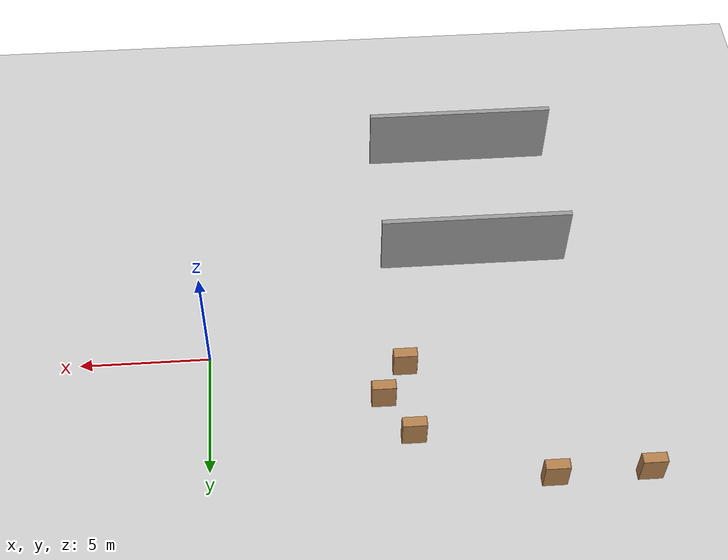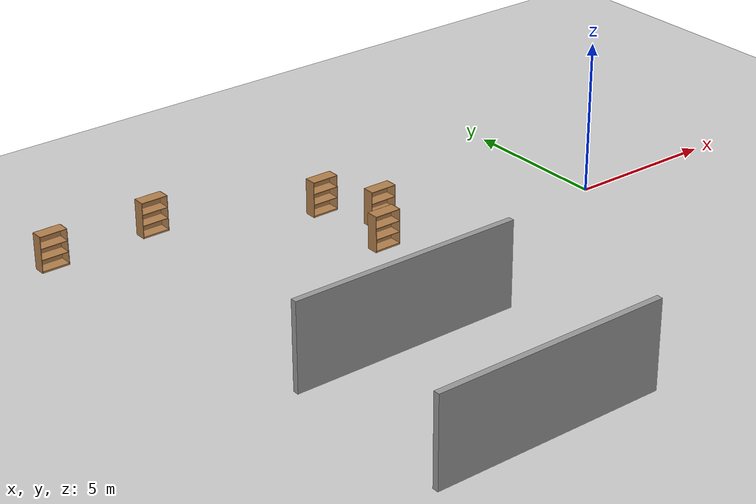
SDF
<sdf version="1.6">
 <world name="default">
  <model name="ground_plane">
   <static>1</static>
   <link name="link">
    <collision name="collision">
     <geometry><plane><normal>0 0 1</normal><size>100 100</size></plane></geometry>
     <surface><friction><ode><mu>100</mu><mu2>50</mu2></ode></friction></surface>
    </collision>
    <visual name="visual">
     <cast_shadows>0</cast_shadows>
     <geometry><plane><normal>0 0 1</normal><size>100 100</size></plane></geometry>
     <material>
      <script><uri>file://media/materials/scripts/gazebo.material</uri><name>Gazebo/Grey</name></script>
     </material>
    </visual>
   </link>
  </model>
  <model name="bookshelf">
   <static>1</static>
   <link name="link">
    <inertial><mass>1</mass></inertial>
    <collision name="back">
     <pose>0 0.005 0.6 0 -0 0</pose>
     <geometry><box><size>0.9 0.01 1.2</size></box></geometry>
    </collision>
    <visual name="visual1">
     <pose>0 0.005 0.6 0 -0 0</pose>
     <geometry><box><size>0.9 0.01 1.2</size></box></geometry>
     <material>
      <script><uri>file://media/materials/scripts/gazebo.material</uri><name>Gazebo/Wood</name></script>
     </material>
    </visual>
    <collision name="left_side">
     <pose>0.45 -0.195 0.6 0 -0 0</pose>
     <geometry><box><size>0.02 0.4 1.2</size></box></geometry>
    </collision>
    <visual name="visual2">
     <pose>0.45 -0.195 0.6 0 -0 0</pose>
     <geometry><box><size>0.02 0.4 1.2</size></box></geometry>
     <material>
      <script><uri>file://media/materials/scripts/gazebo.material</uri><name>Gazebo/Wood</name></script>
     </material>
    </visual>
    <collision name="right_side">
     <pose>-0.45 -0.195 0.6 0 -0 0</pose>
     <geometry><box><size>0.02 0.4 1.2</size></box></geometry>
    </collision>
    <visual name="visual3">
     <pose>-0.45 -0.195 0.6 0 -0 0</pose>
     <geometry><box><size>0.02 0.4 1.2</size></box></geometry>
     <material>
      <script><uri>file://media/materials/scripts/gazebo.material</uri><name>Gazebo/Wood</name></script>
     </material>
    </visual>
    <collision name="bottom">
     <pose>0 -0.195 0.03 0 -0 0</pose>
     <geometry><box><size>0.88 0.4 0.06</size></box></geometry>
    </collision>
    <visual name="visual4">
     <pose>0 -0.195 0.03 0 -0 0</pose>
     <geometry><box><size>0.88 0.4 0.06</size></box></geometry>
     <material>
      <script><uri>file://media/materials/scripts/gazebo.material</uri><name>Gazebo/Wood</name></script>
     </material>
    </visual>
    <collision name="top">
     <pose>0 -0.195 1.19 0 -0 0</pose>
     <geometry><box><size>0.88 0.4 0.02</size></box></geometry>
    </collision>
    <visual name="visual5">
     <pose>0 -0.195 1.19 0 -0 0</pose>
     <geometry><box><size>0.88 0.4 0.02</size></box></geometry>
     <material>
      <script><uri>file://media/materials/scripts/gazebo.material</uri><name>Gazebo/Wood</name></script>
     </material>
    </visual>
    <collision name="low_shelf">
     <pose>0 -0.195 0.43 0 -0 0</pose>
     <geometry><box><size>0.88 0.4 0.02</size></box></geometry>
    </collision>
    <visual name="visual6">
     <pose>0 -0.195 0.43 0 -0 0</pose>
     <geometry><box><size>0.88 0.4 0.02</size></box></geometry>
     <material>
      <script><uri>file://media/materials/scripts/gazebo.material</uri><name>Gazebo/Wood</name></script>
     </material>
    </visual>
    <collision name="high_shelf">
     <pose>0 -0.195 0.8 0 -0 0</pose>
     <geometry><box><size>0.88 0.4 0.02</size></box></geometry>
    </collision>
    <visual name="visual7">
     <pose>0 -0.195 0.8 0 -0 0</pose>
     <geometry><box><size>0.88 0.4 0.02</size></box></geometry>
     <material>
      <script><uri>file://media/materials/scripts/gazebo.material</uri><name>Gazebo/Wood</name></script>
     </material>
    </visual>
   </link>
   <pose>-15.9348 6.24656 0 0 -0 0</pose>
  </model>
  <model name="bookshelf_0">
   <static>1</static>
   <link name="link">
    <inertial><mass>1</mass></inertial>
    <collision name="back">
     <pose>0 0.005 0.6 0 -0 0</pose>
     <geometry><box><size>0.9 0.01 1.2</size></box></geometry>
    </collision>
    <visual name="visual1">
     <pose>0 0.005 0.6 0 -0 0</pose>
     <geometry><box><size>0.9 0.01 1.2</size></box></geometry>
     <material>
      <script><uri>file://media/materials/scripts/gazebo.material</uri><name>Gazebo/Wood</name></script>
     </material>
    </visual>
    <collision name="left_side">
     <pose>0.45 -0.195 0.6 0 -0 0</pose>
     <geometry><box><size>0.02 0.4 1.2</size></box></geometry>
    </collision>
    <visual name="visual2">
     <pose>0.45 -0.195 0.6 0 -0 0</pose>
     <geometry><box><size>0.02 0.4 1.2</size></box></geometry>
     <material>
      <script><uri>file://media/materials/scripts/gazebo.material</uri><name>Gazebo/Wood</name></script>
     </material>
    </visual>
    <collision name="right_side">
     <pose>-0.45 -0.195 0.6 0 -0 0</pose>
     <geometry><box><size>0.02 0.4 1.2</size></box></geometry>
    </collision>
    <visual name="visual3">
     <pose>-0.45 -0.195 0.6 0 -0 0</pose>
     <geometry><box><size>0.02 0.4 1.2</size></box></geometry>
     <material>
      <script><uri>file://media/materials/scripts/gazebo.material</uri><name>Gazebo/Wood</name></script>
     </material>
    </visual>
    <collision name="bottom">
     <pose>0 -0.195 0.03 0 -0 0</pose>
     <geometry><box><size>0.88 0.4 0.06</size></box></geometry>
    </collision>
    <visual name="visual4">
     <pose>0 -0.195 0.03 0 -0 0</pose>
     <geometry><box><size>0.88 0.4 0.06</size></box></geometry>
     <material>
      <script><uri>file://media/materials/scripts/gazebo.material</uri><name>Gazebo/Wood</name></script>
     </material>
    </visual>
    <collision name="top">
     <pose>0 -0.195 1.19 0 -0 0</pose>
     <geometry><box><size>0.88 0.4 0.02</size></box></geometry>
    </collision>
    <visual name="visual5">
     <pose>0 -0.195 1.19 0 -0 0</pose>
     <geometry><box><size>0.88 0.4 0.02</size></box></geometry>
     <material>
      <script><uri>file://media/materials/scripts/gazebo.material</uri><name>Gazebo/Wood</name></script>
     </material>
    </visual>
    <collision name="low_shelf">
     <pose>0 -0.195 0.43 0 -0 0</pose>
     <geometry><box><size>0.88 0.4 0.02</size></box></geometry>
    </collision>
    <visual name="visual6">
     <pose>0 -0.195 0.43 0 -0 0</pose>
     <geometry><box><size>0.88 0.4 0.02</size></box></geometry>
     <material>
      <script><uri>file://media/materials/scripts/gazebo.material</uri><name>Gazebo/Wood</name></script>
     </material>
    </visual>
    <collision name="high_shelf">
     <pose>0 -0.195 0.8 0 -0 0</pose>
     <geometry><box><size>0.88 0.4 0.02</size></box></geometry>
    </collision>
    <visual name="visual7">
     <pose>0 -0.195 0.8 0 -0 0</pose>
     <geometry><box><size>0.88 0.4 0.02</size></box></geometry>
     <material>
      <script><uri>file://media/materials/scripts/gazebo.material</uri><name>Gazebo/Wood</name></script>
     </material>
    </visual>
   </link>
   <pose>-12.4296 6.28504 0 0 -0 0</pose>
  </model>
  <model name="grey_wall">
   <static>1</static>
   <link name="link">
    <pose>0 0 1.4 0 -0 0</pose>
    <collision name="collision"><geometry><box><size>7.5 0.2 2.8</size></box></geometry></collision>
    <visual name="visual">
     <cast_shadows>0</cast_shadows>
     <geometry><box><size>7.5 0.2 2.8</size></box></geometry>
     <material>
      <script>
       <uri>model://grey_wall/materials/scripts</uri>
       <uri>model://grey_wall/materials/textures</uri>
       <name>vrc/grey_wall</name>
      </script>
     </material>
    </visual>
   </link>
   <pose>-10.6913 -4.14824 0 0 -0 0</pose>
  </model>
  <model name="grey_wall_0">
   <static>1</static>
   <link name="link">
    <pose>0 0 1.4 0 -0 0</pose>
    <collision name="collision"><geometry><box><size>7.5 0.2 2.8</size></box></geometry></collision>
    <visual name="visual">
     <cast_shadows>0</cast_shadows>
     <geometry><box><size>7.5 0.2 2.8</size></box></geometry>
     <material>
      <script>
       <uri>model://grey_wall/materials/scripts</uri>
       <uri>model://grey_wall/materials/textures</uri>
       <name>vrc/grey_wall</name>
      </script>
     </material>
    </visual>
   </link>
   <pose>-10.6561 -9.89996 0 0 -0 0</pose>
  </model>
  <model name="bookshelf_1">
   <static>1</static>
   <link name="link">
    <inertial><mass>1</mass></inertial>
    <collision name="back">
     <pose>0 0.005 0.6 0 -0 0</pose>
     <geometry><box><size>0.9 0.01 1.2</size></box></geometry>
    </collision>
    <visual name="visual1">
     <pose>0 0.005 0.6 0 -0 0</pose>
     <geometry><box><size>0.9 0.01 1.2</size></box></geometry>
     <material>
      <script><uri>file://media/materials/scripts/gazebo.material</uri><name>Gazebo/Wood</name></script>
     </material>
    </visual>
    <collision name="left_side">
     <pose>0.45 -0.195 0.6 0 -0 0</pose>
     <geometry><box><size>0.02 0.4 1.2</size></box></geometry>
    </collision>
    <visual name="visual2">
     <pose>0.45 -0.195 0.6 0 -0 0</pose>
     <geometry><box><size>0.02 0.4 1.2</size></box></geometry>
     <material>
      <script><uri>file://media/materials/scripts/gazebo.material</uri><name>Gazebo/Wood</name></script>
     </material>
    </visual>
    <collision name="right_side">
     <pose>-0.45 -0.195 0.6 0 -0 0</pose>
     <geometry><box><size>0.02 0.4 1.2</size></box></geometry>
    </collision>
    <visual name="visual3">
     <pose>-0.45 -0.195 0.6 0 -0 0</pose>
     <geometry><box><size>0.02 0.4 1.2</size></box></geometry>
     <material>
      <script><uri>file://media/materials/scripts/gazebo.material</uri><name>Gazebo/Wood</name></script>
     </material>
    </visual>
    <collision name="bottom">
     <pose>0 -0.195 0.03 0 -0 0</pose>
     <geometry><box><size>0.88 0.4 0.06</size></box></geometry>
    </collision>
    <visual name="visual4">
     <pose>0 -0.195 0.03 0 -0 0</pose>
     <geometry><box><size>0.88 0.4 0.06</size></box></geometry>
     <material>
      <script><uri>file://media/materials/scripts/gazebo.material</uri><name>Gazebo/Wood</name></script>
     </material>
    </visual>
    <collision name="top">
     <pose>0 -0.195 1.19 0 -0 0</pose>
     <geometry><box><size>0.88 0.4 0.02</size></box></geometry>
    </collision>
    <visual name="visual5">
     <pose>0 -0.195 1.19 0 -0 0</pose>
     <geometry><box><size>0.88 0.4 0.02</size></box></geometry>
     <material>
      <script><uri>file://media/materials/scripts/gazebo.material</uri><name>Gazebo/Wood</name></script>
     </material>
    </visual>
    <collision name="low_shelf">
     <pose>0 -0.195 0.43 0 -0 0</pose>
     <geometry><box><size>0.88 0.4 0.02</size></box></geometry>
    </collision>
    <visual name="visual6">
     <pose>0 -0.195 0.43 0 -0 0</pose>
     <geometry><box><size>0.88 0.4 0.02</size></box></geometry>
     <material>
      <script><uri>file://media/materials/scripts/gazebo.material</uri><name>Gazebo/Wood</name></script>
     </material>
    </visual>
    <collision name="high_shelf">
     <pose>0 -0.195 0.8 0 -0 0</pose>
     <geometry><box><size>0.88 0.4 0.02</size></box></geometry>
    </collision>
    <visual name="visual7">
     <pose>0 -0.195 0.8 0 -0 0</pose>
     <geometry><box><size>0.88 0.4 0.02</size></box></geometry>
     <material>
      <script><uri>file://media/materials/scripts/gazebo.material</uri><name>Gazebo/Wood</name></script>
     </material>
    </visual>
   </link>
   <pose>-7.51809 4.20687 0 0 -0 0</pose>
  </model>
  <model name="bookshelf_4">
   <static>1</static>
   <link name="link">
    <inertial><mass>1</mass></inertial>
    <collision name="back">
     <pose>0 0.005 0.6 0 -0 0</pose>
     <geometry><box><size>0.9 0.01 1.2</size></box></geometry>
    </collision>
    <visual name="visual1">
     <pose>0 0.005 0.6 0 -0 0</pose>
     <geometry><box><size>0.9 0.01 1.2</size></box></geometry>
     <material>
      <script><uri>file://media/materials/scripts/gazebo.material</uri><name>Gazebo/Wood</name></script>
     </material>
    </visual>
    <collision name="left_side">
     <pose>0.45 -0.195 0.6 0 -0 0</pose>
     <geometry><box><size>0.02 0.4 1.2</size></box></geometry>
    </collision>
    <visual name="visual2">
     <pose>0.45 -0.195 0.6 0 -0 0</pose>
     <geometry><box><size>0.02 0.4 1.2</size></box></geometry>
     <material>
      <script><uri>file://media/materials/scripts/gazebo.material</uri><name>Gazebo/Wood</name></script>
     </material>
    </visual>
    <collision name="right_side">
     <pose>-0.45 -0.195 0.6 0 -0 0</pose>
     <geometry><box><size>0.02 0.4 1.2</size></box></geometry>
    </collision>
    <visual name="visual3">
     <pose>-0.45 -0.195 0.6 0 -0 0</pose>
     <geometry><box><size>0.02 0.4 1.2</size></box></geometry>
     <material>
      <script><uri>file://media/materials/scripts/gazebo.material</uri><name>Gazebo/Wood</name></script>
     </material>
    </visual>
    <collision name="bottom">
     <pose>0 -0.195 0.03 0 -0 0</pose>
     <geometry><box><size>0.88 0.4 0.06</size></box></geometry>
    </collision>
    <visual name="visual4">
     <pose>0 -0.195 0.03 0 -0 0</pose>
     <geometry><box><size>0.88 0.4 0.06</size></box></geometry>
     <material>
      <script><uri>file://media/materials/scripts/gazebo.material</uri><name>Gazebo/Wood</name></script>
     </material>
    </visual>
    <collision name="top">
     <pose>0 -0.195 1.19 0 -0 0</pose>
     <geometry><box><size>0.88 0.4 0.02</size></box></geometry>
    </collision>
    <visual name="visual5">
     <pose>0 -0.195 1.19 0 -0 0</pose>
     <geometry><box><size>0.88 0.4 0.02</size></box></geometry>
     <material>
      <script><uri>file://media/materials/scripts/gazebo.material</uri><name>Gazebo/Wood</name></script>
     </material>
    </visual>
    <collision name="low_shelf">
     <pose>0 -0.195 0.43 0 -0 0</pose>
     <geometry><box><size>0.88 0.4 0.02</size></box></geometry>
    </collision>
    <visual name="visual6">
     <pose>0 -0.195 0.43 0 -0 0</pose>
     <geometry><box><size>0.88 0.4 0.02</size></box></geometry>
     <material>
      <script><uri>file://media/materials/scripts/gazebo.material</uri><name>Gazebo/Wood</name></script>
     </material>
    </visual>
    <collision name="high_shelf">
     <pose>0 -0.195 0.8 0 -0 0</pose>
     <geometry><box><size>0.88 0.4 0.02</size></box></geometry>
    </collision>
    <visual name="visual7">
     <pose>0 -0.195 0.8 0 -0 0</pose>
     <geometry><box><size>0.88 0.4 0.02</size></box></geometry>
     <material>
      <script><uri>file://media/materials/scripts/gazebo.material</uri><name>Gazebo/Wood</name></script>
     </material>
    </visual>
   </link>
   <pose>-6.52943 2.54567 0 0 -0 0</pose>
  </model>
  <model name="bookshelf_6">
   <static>1</static>
   <link name="link">
    <inertial><mass>1</mass></inertial>
    <collision name="back">
     <pose>0 0.005 0.6 0 -0 0</pose>
     <geometry><box><size>0.9 0.01 1.2</size></box></geometry>
    </collision>
    <visual name="visual1">
     <pose>0 0.005 0.6 0 -0 0</pose>
     <geometry><box><size>0.9 0.01 1.2</size></box></geometry>
     <material>
      <script><uri>file://media/materials/scripts/gazebo.material</uri><name>Gazebo/Wood</name></script>
     </material>
    </visual>
    <collision name="left_side">
     <pose>0.45 -0.195 0.6 0 -0 0</pose>
     <geometry><box><size>0.02 0.4 1.2</size></box></geometry>
    </collision>
    <visual name="visual2">
     <pose>0.45 -0.195 0.6 0 -0 0</pose>
     <geometry><box><size>0.02 0.4 1.2</size></box></geometry>
     <material>
      <script><uri>file://media/materials/scripts/gazebo.material</uri><name>Gazebo/Wood</name></script>
     </material>
    </visual>
    <collision name="right_side">
     <pose>-0.45 -0.195 0.6 0 -0 0</pose>
     <geometry><box><size>0.02 0.4 1.2</size></box></geometry>
    </collision>
    <visual name="visual3">
     <pose>-0.45 -0.195 0.6 0 -0 0</pose>
     <geometry><box><size>0.02 0.4 1.2</size></box></geometry>
     <material>
      <script><uri>file://media/materials/scripts/gazebo.material</uri><name>Gazebo/Wood</name></script>
     </material>
    </visual>
    <collision name="bottom">
     <pose>0 -0.195 0.03 0 -0 0</pose>
     <geometry><box><size>0.88 0.4 0.06</size></box></geometry>
    </collision>
    <visual name="visual4">
     <pose>0 -0.195 0.03 0 -0 0</pose>
     <geometry><box><size>0.88 0.4 0.06</size></box></geometry>
     <material>
      <script><uri>file://media/materials/scripts/gazebo.material</uri><name>Gazebo/Wood</name></script>
     </material>
    </visual>
    <collision name="top">
     <pose>0 -0.195 1.19 0 -0 0</pose>
     <geometry><box><size>0.88 0.4 0.02</size></box></geometry>
    </collision>
    <visual name="visual5">
     <pose>0 -0.195 1.19 0 -0 0</pose>
     <geometry><box><size>0.88 0.4 0.02</size></box></geometry>
     <material>
      <script><uri>file://media/materials/scripts/gazebo.material</uri><name>Gazebo/Wood</name></script>
     </material>
    </visual>
    <collision name="low_shelf">
     <pose>0 -0.195 0.43 0 -0 0</pose>
     <geometry><box><size>0.88 0.4 0.02</size></box></geometry>
    </collision>
    <visual name="visual6">
     <pose>0 -0.195 0.43 0 -0 0</pose>
     <geometry><box><size>0.88 0.4 0.02</size></box></geometry>
     <material>
      <script><uri>file://media/materials/scripts/gazebo.material</uri><name>Gazebo/Wood</name></script>
     </material>
    </visual>
    <collision name="high_shelf">
     <pose>0 -0.195 0.8 0 -0 0</pose>
     <geometry><box><size>0.88 0.4 0.02</size></box></geometry>
    </collision>
    <visual name="visual7">
     <pose>0 -0.195 0.8 0 -0 0</pose>
     <geometry><box><size>0.88 0.4 0.02</size></box></geometry>
     <material>
      <script><uri>file://media/materials/scripts/gazebo.material</uri><name>Gazebo/Wood</name></script>
     </material>
    </visual>
   </link>
   <pose>-7.44952 1.161 0 0 -0 0</pose>
  </model>
 </world>
</sdf>
